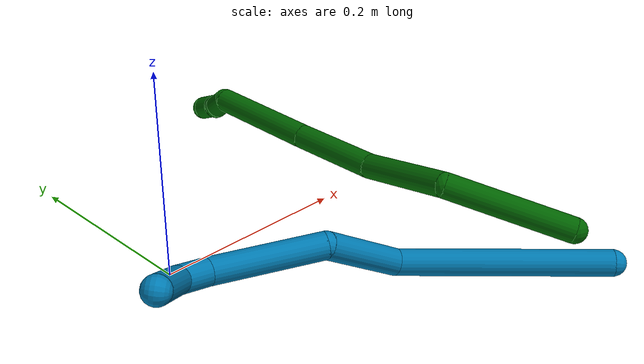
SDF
<sdf version="1.7">
 <world name="default">
  <model name="6">
   <static>0</static>
   <link name="6">
    <collision name="collision-cylinder-e_1_1_4">
     <pose>0.036216 0.039264 -0.033509 -2.27727 0.611801 -1.20077</pose>
     <geometry><cylinder><radius>0.0125</radius><length>0.126113</length></cylinder></geometry>
     <surface>
      <friction><ode><mu>1.16</mu><mu2>1.16</mu2><slip1>0</slip1><slip2>0</slip2></ode></friction>
      <contact><ode><kp>1e+06</kp><kd>1</kd><max_vel>0</max_vel><min_depth>0.001</min_depth></ode></contact>
     </surface>
    </collision>
    <visual name="visual-cylinder-e_1_1_4">
     <pose>0.036216 0.039264 -0.033509 -2.27727 0.611801 -1.20077</pose>
     <geometry><cylinder><radius>0.0125</radius><length>0.126113</length></cylinder></geometry>
     <material><ambient>0 0.392157 0.003922 1</ambient></material>
    </visual>
    <collision name="collision-cylinder-e_2_4_5">
     <pose>0.067818 0.122862 -0.085018 -1.9565 -0.09613 0.142654</pose>
     <geometry><cylinder><radius>0.0125</radius><length>0.096141</length></cylinder></geometry>
     <surface>
      <friction><ode><mu>1.16</mu><mu2>1.16</mu2><slip1>0</slip1><slip2>0</slip2></ode></friction>
      <contact><ode><kp>1e+06</kp><kd>1</kd><max_vel>0</max_vel><min_depth>0.001</min_depth></ode></contact>
     </surface>
    </collision>
    <visual name="visual-cylinder-e_2_4_5">
     <pose>0.067818 0.122862 -0.085018 -1.9565 -0.09613 0.142654</pose>
     <geometry><cylinder><radius>0.0125</radius><length>0.096141</length></cylinder></geometry>
     <material><ambient>0 0.392157 0.003922 1</ambient></material>
    </visual>
    <collision name="collision-cylinder-e_3_5_6">
     <pose>0.062833 0.206859 -0.127389 -2.12174 -0.007975 0.01426</pose>
     <geometry><cylinder><radius>0.0125</radius><length>0.093108</length></cylinder></geometry>
     <surface>
      <friction><ode><mu>1.16</mu><mu2>1.16</mu2><slip1>0</slip1><slip2>0</slip2></ode></friction>
      <contact><ode><kp>1e+06</kp><kd>1</kd><max_vel>0</max_vel><min_depth>0.001</min_depth></ode></contact>
     </surface>
    </collision>
    <visual name="visual-cylinder-e_3_5_6">
     <pose>0.062833 0.206859 -0.127389 -2.12174 -0.007975 0.01426</pose>
     <geometry><cylinder><radius>0.0125</radius><length>0.093108</length></cylinder></geometry>
     <material><ambient>0 0.392157 0.003922 1</ambient></material>
    </visual>
    <collision name="collision-cylinder-e_4_6_7">
     <pose>0.062514 0.297883 -0.184783 -2.14224 0.000866 -0.001586</pose>
     <geometry><cylinder><radius>0.0125</radius><length>0.12212</length></cylinder></geometry>
     <surface>
      <friction><ode><mu>1.16</mu><mu2>1.16</mu2><slip1>0</slip1><slip2>0</slip2></ode></friction>
      <contact><ode><kp>1e+06</kp><kd>1</kd><max_vel>0</max_vel><min_depth>0.001</min_depth></ode></contact>
     </surface>
    </collision>
    <visual name="visual-cylinder-e_4_6_7">
     <pose>0.062514 0.297883 -0.184783 -2.14224 0.000866 -0.001586</pose>
     <geometry><cylinder><radius>0.0125</radius><length>0.12212</length></cylinder></geometry>
     <material><ambient>0 0.392157 0.003922 1</ambient></material>
    </visual>
    <collision name="collision-cylinder-e_5_7_8">
     <pose>0.061123 0.359212 -0.216374 -1.42803 -0.142397 0.123443</pose>
     <geometry><cylinder><radius>0.0125</radius><length>0.020352</length></cylinder></geometry>
     <surface>
      <friction><ode><mu>1.16</mu><mu2>1.16</mu2><slip1>0</slip1><slip2>0</slip2></ode></friction>
      <contact><ode><kp>1e+06</kp><kd>1</kd><max_vel>0</max_vel><min_depth>0.001</min_depth></ode></contact>
     </surface>
    </collision>
    <visual name="visual-cylinder-e_5_7_8">
     <pose>0.061123 0.359212 -0.216374 -1.42803 -0.142397 0.123443</pose>
     <geometry><cylinder><radius>0.0125</radius><length>0.020352</length></cylinder></geometry>
     <material><ambient>0 0.392157 0.003922 1</ambient></material>
    </visual>
    <collision name="collision-cylinder-e_6_8_9">
     <pose>0.053462 0.376964 -0.217213 -1.85485 -0.654248 0.849932</pose>
     <geometry><cylinder><radius>0.0125</radius><length>0.020433</length></cylinder></geometry>
     <surface>
      <friction><ode><mu>1.16</mu><mu2>1.16</mu2><slip1>0</slip1><slip2>0</slip2></ode></friction>
      <contact><ode><kp>1e+06</kp><kd>1</kd><max_vel>0</max_vel><min_depth>0.001</min_depth></ode></contact>
     </surface>
    </collision>
    <visual name="visual-cylinder-e_6_8_9">
     <pose>0.053462 0.376964 -0.217213 -1.85485 -0.654248 0.849932</pose>
     <geometry><cylinder><radius>0.0125</radius><length>0.020433</length></cylinder></geometry>
     <material><ambient>0 0.392157 0.003922 1</ambient></material>
    </visual>
    <collision name="collision-cylinder-e_7_9_2">
     <pose>0.046133 0.395455 -0.220961 -1.70777 -0.102466 0.117526</pose>
     <geometry><cylinder><radius>0.0125</radius><length>0.021733</length></cylinder></geometry>
     <surface>
      <friction><ode><mu>1.16</mu><mu2>1.16</mu2><slip1>0</slip1><slip2>0</slip2></ode></friction>
      <contact><ode><kp>1e+06</kp><kd>1</kd><max_vel>0</max_vel><min_depth>0.001</min_depth></ode></contact>
     </surface>
    </collision>
    <visual name="visual-cylinder-e_7_9_2">
     <pose>0.046133 0.395455 -0.220961 -1.70777 -0.102466 0.117526</pose>
     <geometry><cylinder><radius>0.0125</radius><length>0.021733</length></cylinder></geometry>
     <material><ambient>0 0.392157 0.003922 1</ambient></material>
    </visual>
    <collision name="collision-sphere-2">
     <pose>0.045021 0.406163 -0.222437 0 -0 0</pose>
     <geometry><sphere><radius>0.0125</radius></sphere></geometry>
     <surface>
      <friction><ode><mu>1.16</mu><mu2>1.16</mu2><slip1>0</slip1><slip2>0</slip2></ode></friction>
      <contact><ode><kp>1e+06</kp><kd>1</kd><max_vel>0</max_vel><min_depth>0.001</min_depth></ode></contact>
     </surface>
    </collision>
    <visual name="visual-sphere-2">
     <pose>0.045021 0.406163 -0.222437 0 -0 0</pose>
     <geometry><sphere><radius>0.0125</radius></sphere></geometry>
     <material><ambient>0 0.392157 0.003922 1</ambient></material>
    </visual>
    <collision name="collision-sphere-9">
     <pose>0.047244 0.384746 -0.219485 0 -0 0</pose>
     <geometry><sphere><radius>0.0125</radius></sphere></geometry>
     <surface>
      <friction><ode><mu>1.16</mu><mu2>1.16</mu2><slip1>0</slip1><slip2>0</slip2></ode></friction>
      <contact><ode><kp>1e+06</kp><kd>1</kd><max_vel>0</max_vel><min_depth>0.001</min_depth></ode></contact>
     </surface>
    </collision>
    <visual name="visual-sphere-9">
     <pose>0.047244 0.384746 -0.219485 0 -0 0</pose>
     <geometry><sphere><radius>0.0125</radius></sphere></geometry>
     <material><ambient>0 0.392157 0.003922 1</ambient></material>
    </visual>
    <collision name="collision-sphere-4">
     <pose>0.072432 0.078529 -0.067017 0 -0 0</pose>
     <geometry><sphere><radius>0.0125</radius></sphere></geometry>
     <surface>
      <friction><ode><mu>1.16</mu><mu2>1.16</mu2><slip1>0</slip1><slip2>0</slip2></ode></friction>
      <contact><ode><kp>1e+06</kp><kd>1</kd><max_vel>0</max_vel><min_depth>0.001</min_depth></ode></contact>
     </surface>
    </collision>
    <visual name="visual-sphere-4">
     <pose>0.072432 0.078529 -0.067017 0 -0 0</pose>
     <geometry><sphere><radius>0.0125</radius></sphere></geometry>
     <material><ambient>0 0.392157 0.003922 1</ambient></material>
    </visual>
    <collision name="collision-sphere-1">
     <geometry><sphere><radius>0.0125</radius></sphere></geometry>
     <surface>
      <friction><ode><mu>1.16</mu><mu2>1.16</mu2><slip1>0</slip1><slip2>0</slip2></ode></friction>
      <contact><ode><kp>1e+06</kp><kd>1</kd><max_vel>0</max_vel><min_depth>0.001</min_depth></ode></contact>
     </surface>
    </collision>
    <visual name="visual-sphere-1">
     <geometry><sphere><radius>0.0125</radius></sphere></geometry>
     <material><ambient>0 0.392157 0.003922 1</ambient></material>
    </visual>
    <collision name="collision-sphere-8">
     <pose>0.059679 0.369182 -0.214941 0 -0 0</pose>
     <geometry><sphere><radius>0.0125</radius></sphere></geometry>
     <surface>
      <friction><ode><mu>1.16</mu><mu2>1.16</mu2><slip1>0</slip1><slip2>0</slip2></ode></friction>
      <contact><ode><kp>1e+06</kp><kd>1</kd><max_vel>0</max_vel><min_depth>0.001</min_depth></ode></contact>
     </surface>
    </collision>
    <visual name="visual-sphere-8">
     <pose>0.059679 0.369182 -0.214941 0 -0 0</pose>
     <geometry><sphere><radius>0.0125</radius></sphere></geometry>
     <material><ambient>0 0.392157 0.003922 1</ambient></material>
    </visual>
    <collision name="collision-sphere-5">
     <pose>0.063204 0.167195 -0.10302 0 -0 0</pose>
     <geometry><sphere><radius>0.0125</radius></sphere></geometry>
     <surface>
      <friction><ode><mu>1.16</mu><mu2>1.16</mu2><slip1>0</slip1><slip2>0</slip2></ode></friction>
      <contact><ode><kp>1e+06</kp><kd>1</kd><max_vel>0</max_vel><min_depth>0.001</min_depth></ode></contact>
     </surface>
    </collision>
    <visual name="visual-sphere-5">
     <pose>0.063204 0.167195 -0.10302 0 -0 0</pose>
     <geometry><sphere><radius>0.0125</radius></sphere></geometry>
     <material><ambient>0 0.392157 0.003922 1</ambient></material>
    </visual>
    <collision name="collision-sphere-6">
     <pose>0.062462 0.246524 -0.151759 0 -0 0</pose>
     <geometry><sphere><radius>0.0125</radius></sphere></geometry>
     <surface>
      <friction><ode><mu>1.16</mu><mu2>1.16</mu2><slip1>0</slip1><slip2>0</slip2></ode></friction>
      <contact><ode><kp>1e+06</kp><kd>1</kd><max_vel>0</max_vel><min_depth>0.001</min_depth></ode></contact>
     </surface>
    </collision>
    <visual name="visual-sphere-6">
     <pose>0.062462 0.246524 -0.151759 0 -0 0</pose>
     <geometry><sphere><radius>0.0125</radius></sphere></geometry>
     <material><ambient>0 0.392157 0.003922 1</ambient></material>
    </visual>
    <collision name="collision-sphere-7">
     <pose>0.062567 0.349241 -0.217807 0 -0 0</pose>
     <geometry><sphere><radius>0.0125</radius></sphere></geometry>
     <surface>
      <friction><ode><mu>1.16</mu><mu2>1.16</mu2><slip1>0</slip1><slip2>0</slip2></ode></friction>
      <contact><ode><kp>1e+06</kp><kd>1</kd><max_vel>0</max_vel><min_depth>0.001</min_depth></ode></contact>
     </surface>
    </collision>
    <visual name="visual-sphere-7">
     <pose>0.062567 0.349241 -0.217807 0 -0 0</pose>
     <geometry><sphere><radius>0.0125</radius></sphere></geometry>
     <material><ambient>0 0.392157 0.003922 1</ambient></material>
    </visual>
    <inertial>
     <pose>0.055822 0.192018 -0.120941 0 -0 0</pose>
     <mass>0.5</mass>
     <inertia>
      <ixx>0.000244</ixx>
      <ixy>0</ixy>
      <ixz>0</ixz>
      <iyy>-0.000206</iyy>
      <iyz>0</iyz>
      <izz>-0.000482</izz>
     </inertia>
    </inertial>
   </link>
   <pose>0.279669 -0.243367 0.035081 -2.59049 -0.260163 -3.11617</pose>
  </model>
  <model name="9">
   <static>0</static>
   <link name="9">
    <collision name="collision-cylinder-e_1_1_4">
     <pose>0.004473 -0.012352 -0.097874 3.01605 0.045314 0.692073</pose>
     <geometry><cylinder><radius>0.0125</radius><length>0.197503</length></cylinder></geometry>
     <surface>
      <friction><ode><mu>1.16</mu><mu2>1.16</mu2><slip1>0</slip1><slip2>0</slip2></ode></friction>
      <contact><ode><kp>1e+06</kp><kd>1</kd><max_vel>0</max_vel><min_depth>0.001</min_depth></ode></contact>
     </surface>
    </collision>
    <visual name="visual-cylinder-e_1_1_4">
     <pose>0.004473 -0.012352 -0.097874 3.01605 0.045314 0.692073</pose>
     <geometry><cylinder><radius>0.0125</radius><length>0.197503</length></cylinder></geometry>
     <material><ambient>0 0.490196 0.709804 1</ambient></material>
    </visual>
    <collision name="collision-cylinder-e_2_4_5">
     <pose>-0.018834 -0.030255 -0.228786 2.97513 -0.692322 -2.687</pose>
     <geometry><cylinder><radius>0.0125</radius><length>0.087041</length></cylinder></geometry>
     <surface>
      <friction><ode><mu>1.16</mu><mu2>1.16</mu2><slip1>0</slip1><slip2>0</slip2></ode></friction>
      <contact><ode><kp>1e+06</kp><kd>1</kd><max_vel>0</max_vel><min_depth>0.001</min_depth></ode></contact>
     </surface>
    </collision>
    <visual name="visual-cylinder-e_2_4_5">
     <pose>-0.018834 -0.030255 -0.228786 2.97513 -0.692322 -2.687</pose>
     <geometry><cylinder><radius>0.0125</radius><length>0.087041</length></cylinder></geometry>
     <material><ambient>0 0.490196 0.709804 1</ambient></material>
    </visual>
    <collision name="collision-cylinder-e_3_5_6">
     <pose>-0.051221 -0.055757 -0.309411 2.7446 -0.089036 -0.4359</pose>
     <geometry><cylinder><radius>0.0125</radius><length>0.103612</length></cylinder></geometry>
     <surface>
      <friction><ode><mu>1.16</mu><mu2>1.16</mu2><slip1>0</slip1><slip2>0</slip2></ode></friction>
      <contact><ode><kp>1e+06</kp><kd>1</kd><max_vel>0</max_vel><min_depth>0.001</min_depth></ode></contact>
     </surface>
    </collision>
    <visual name="visual-cylinder-e_3_5_6">
     <pose>-0.051221 -0.055757 -0.309411 2.7446 -0.089036 -0.4359</pose>
     <geometry><cylinder><radius>0.0125</radius><length>0.103612</length></cylinder></geometry>
     <material><ambient>0 0.490196 0.709804 1</ambient></material>
    </visual>
    <collision name="collision-cylinder-e_4_6_7">
     <pose>-0.06611 -0.083838 -0.367685 2.49126 -0.65358 -1.57615</pose>
     <geometry><cylinder><radius>0.0125</radius><length>0.033823</length></cylinder></geometry>
     <surface>
      <friction><ode><mu>1.16</mu><mu2>1.16</mu2><slip1>0</slip1><slip2>0</slip2></ode></friction>
      <contact><ode><kp>1e+06</kp><kd>1</kd><max_vel>0</max_vel><min_depth>0.001</min_depth></ode></contact>
     </surface>
    </collision>
    <visual name="visual-cylinder-e_4_6_7">
     <pose>-0.06611 -0.083838 -0.367685 2.49126 -0.65358 -1.57615</pose>
     <geometry><cylinder><radius>0.0125</radius><length>0.033823</length></cylinder></geometry>
     <material><ambient>0 0.490196 0.709804 1</ambient></material>
    </visual>
    <collision name="collision-cylinder-e_5_7_2">
     <pose>-0.112558 -0.106323 -0.381146 1.76177 -1.18656 -1.37025</pose>
     <geometry><cylinder><radius>0.0125</radius><length>0.07802</length></cylinder></geometry>
     <surface>
      <friction><ode><mu>1.16</mu><mu2>1.16</mu2><slip1>0</slip1><slip2>0</slip2></ode></friction>
      <contact><ode><kp>1e+06</kp><kd>1</kd><max_vel>0</max_vel><min_depth>0.001</min_depth></ode></contact>
     </surface>
    </collision>
    <visual name="visual-cylinder-e_5_7_2">
     <pose>-0.112558 -0.106323 -0.381146 1.76177 -1.18656 -1.37025</pose>
     <geometry><cylinder><radius>0.0125</radius><length>0.07802</length></cylinder></geometry>
     <material><ambient>0 0.490196 0.709804 1</ambient></material>
    </visual>
    <collision name="collision-sphere-2">
     <pose>-0.148724 -0.12068 -0.383922 0 -0 0</pose>
     <geometry><sphere><radius>0.0125</radius></sphere></geometry>
     <surface>
      <friction><ode><mu>1.16</mu><mu2>1.16</mu2><slip1>0</slip1><slip2>0</slip2></ode></friction>
      <contact><ode><kp>1e+06</kp><kd>1</kd><max_vel>0</max_vel><min_depth>0.001</min_depth></ode></contact>
     </surface>
    </collision>
    <visual name="visual-sphere-2">
     <pose>-0.148724 -0.12068 -0.383922 0 -0 0</pose>
     <geometry><sphere><radius>0.0125</radius></sphere></geometry>
     <material><ambient>0 0.490196 0.709804 1</ambient></material>
    </visual>
    <collision name="collision-sphere-7">
     <pose>-0.076393 -0.091967 -0.378371 0 -0 0</pose>
     <geometry><sphere><radius>0.0125</radius></sphere></geometry>
     <surface>
      <friction><ode><mu>1.16</mu><mu2>1.16</mu2><slip1>0</slip1><slip2>0</slip2></ode></friction>
      <contact><ode><kp>1e+06</kp><kd>1</kd><max_vel>0</max_vel><min_depth>0.001</min_depth></ode></contact>
     </surface>
    </collision>
    <visual name="visual-sphere-7">
     <pose>-0.076393 -0.091967 -0.378371 0 -0 0</pose>
     <geometry><sphere><radius>0.0125</radius></sphere></geometry>
     <material><ambient>0 0.490196 0.709804 1</ambient></material>
    </visual>
    <collision name="collision-sphere-6">
     <pose>-0.055827 -0.075708 -0.356999 0 -0 0</pose>
     <geometry><sphere><radius>0.0125</radius></sphere></geometry>
     <surface>
      <friction><ode><mu>1.16</mu><mu2>1.16</mu2><slip1>0</slip1><slip2>0</slip2></ode></friction>
      <contact><ode><kp>1e+06</kp><kd>1</kd><max_vel>0</max_vel><min_depth>0.001</min_depth></ode></contact>
     </surface>
    </collision>
    <visual name="visual-sphere-6">
     <pose>-0.055827 -0.075708 -0.356999 0 -0 0</pose>
     <geometry><sphere><radius>0.0125</radius></sphere></geometry>
     <material><ambient>0 0.490196 0.709804 1</ambient></material>
    </visual>
    <collision name="collision-sphere-5">
     <pose>-0.046614 -0.035806 -0.261823 0 -0 0</pose>
     <geometry><sphere><radius>0.0125</radius></sphere></geometry>
     <surface>
      <friction><ode><mu>1.16</mu><mu2>1.16</mu2><slip1>0</slip1><slip2>0</slip2></ode></friction>
      <contact><ode><kp>1e+06</kp><kd>1</kd><max_vel>0</max_vel><min_depth>0.001</min_depth></ode></contact>
     </surface>
    </collision>
    <visual name="visual-sphere-5">
     <pose>-0.046614 -0.035806 -0.261823 0 -0 0</pose>
     <geometry><sphere><radius>0.0125</radius></sphere></geometry>
     <material><ambient>0 0.490196 0.709804 1</ambient></material>
    </visual>
    <collision name="collision-sphere-1">
     <geometry><sphere><radius>0.0125</radius></sphere></geometry>
     <surface>
      <friction><ode><mu>1.16</mu><mu2>1.16</mu2><slip1>0</slip1><slip2>0</slip2></ode></friction>
      <contact><ode><kp>1e+06</kp><kd>1</kd><max_vel>0</max_vel><min_depth>0.001</min_depth></ode></contact>
     </surface>
    </collision>
    <visual name="visual-sphere-1">
     <geometry><sphere><radius>0.0125</radius></sphere></geometry>
     <material><ambient>0 0.490196 0.709804 1</ambient></material>
    </visual>
    <collision name="collision-sphere-4">
     <pose>0.008947 -0.024704 -0.195748 0 -0 0</pose>
     <geometry><sphere><radius>0.0125</radius></sphere></geometry>
     <surface>
      <friction><ode><mu>1.16</mu><mu2>1.16</mu2><slip1>0</slip1><slip2>0</slip2></ode></friction>
      <contact><ode><kp>1e+06</kp><kd>1</kd><max_vel>0</max_vel><min_depth>0.001</min_depth></ode></contact>
     </surface>
    </collision>
    <visual name="visual-sphere-4">
     <pose>0.008947 -0.024704 -0.195748 0 -0 0</pose>
     <geometry><sphere><radius>0.0125</radius></sphere></geometry>
     <material><ambient>0 0.490196 0.709804 1</ambient></material>
    </visual>
    <inertial>
     <pose>-0.034161 -0.043962 -0.226953 0 -0 0</pose>
     <mass>0.5</mass>
     <inertia>
      <ixx>0.000873</ixx>
      <ixy>0</ixy>
      <ixz>0</ixz>
      <iyy>-0.000156</iyy>
      <iyz>0</iyz>
      <izz>0.000173</izz>
     </inertia>
    </inertial>
   </link>
   <pose>0.289726 -0.280386 0.012467 1.7637 0.873448 0.88524</pose>
  </model>
 </world>
</sdf>
